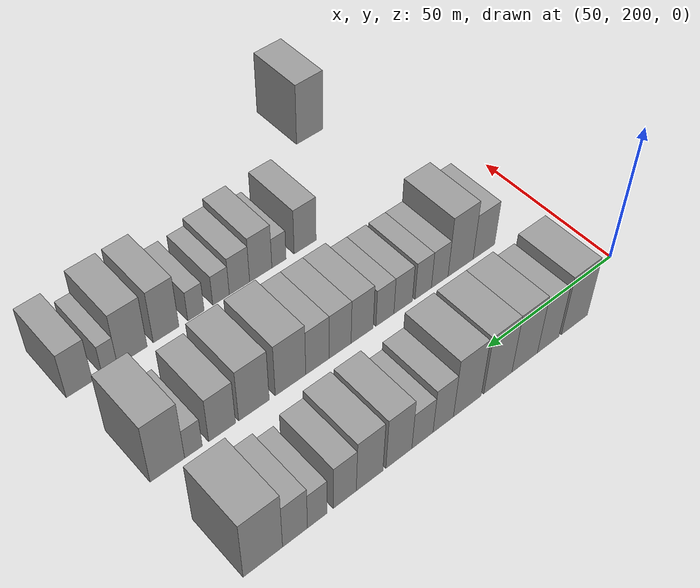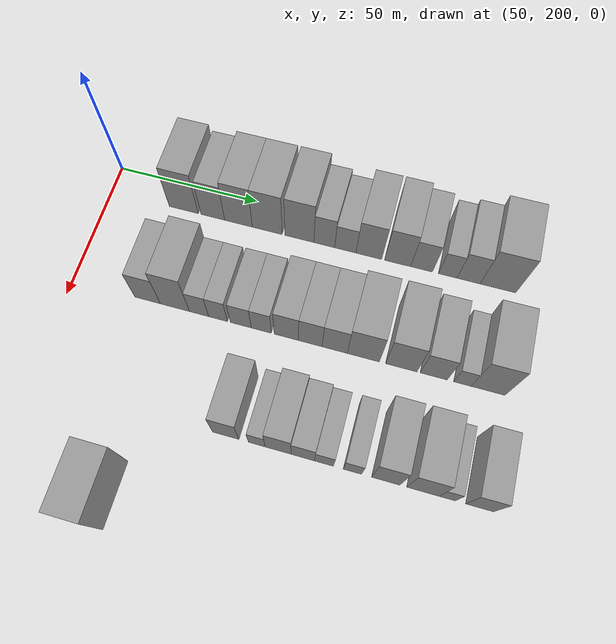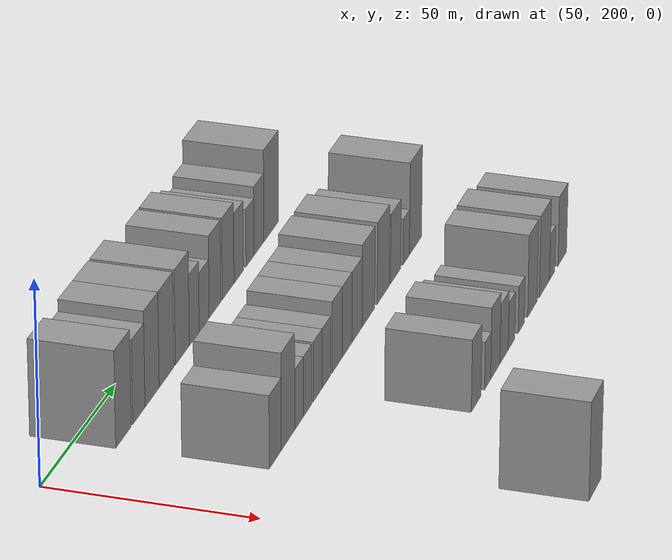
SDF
<sdf version="1.6">
 <world name="default">
  <model name="building_87">
   <static>1</static>
   <pose>50.0000 226.5905 0 0.000000 0.000000 0.000000</pose>
   <link name="link">
    <pose>0 0 12.00 0 0 0</pose>
    <collision name="collision"><geometry><box><size>20.0000 10.5768 24.0000</size></box></geometry></collision>
    <visual name="visual">
     <cast_shadows>0</cast_shadows>
     <geometry><box><size>20.0000 10.5768 24.0000</size></box></geometry>
     <material>
      <script>
       <uri>model://grey_wall/materials/scripts</uri>
       <uri>model://grey_wall/materials/textures</uri>
       <name>vrc/grey_wall</name>
      </script>
     </material>
    </visual>
   </link>
  </model>
  <model name="building_88">
   <static>1</static>
   <pose>50.0000 237.1452 0 0.000000 0.000000 0.000000</pose>
   <link name="link">
    <pose>0 0 10.50 0 0 0</pose>
    <collision name="collision"><geometry><box><size>20.0000 8.5326 21.0000</size></box></geometry></collision>
    <visual name="visual">
     <cast_shadows>0</cast_shadows>
     <geometry><box><size>20.0000 8.5326 21.0000</size></box></geometry>
     <material>
      <script>
       <uri>model://grey_wall/materials/scripts</uri>
       <uri>model://grey_wall/materials/textures</uri>
       <name>vrc/grey_wall</name>
      </script>
     </material>
    </visual>
   </link>
  </model>
  <model name="building_89">
   <static>1</static>
   <pose>50.0000 246.3633 0 0.000000 0.000000 0.000000</pose>
   <link name="link">
    <pose>0 0 12.00 0 0 0</pose>
    <collision name="collision"><geometry><box><size>20.0000 9.9037 24.0000</size></box></geometry></collision>
    <visual name="visual">
     <cast_shadows>0</cast_shadows>
     <geometry><box><size>20.0000 9.9037 24.0000</size></box></geometry>
     <material>
      <script>
       <uri>model://grey_wall/materials/scripts</uri>
       <uri>model://grey_wall/materials/textures</uri>
       <name>vrc/grey_wall</name>
      </script>
     </material>
    </visual>
   </link>
  </model>
  <model name="building_90">
   <static>1</static>
   <pose>50.0000 256.5942 0 0.000000 0.000000 0.000000</pose>
   <link name="link">
    <pose>0 0 12.00 0 0 0</pose>
    <collision name="collision"><geometry><box><size>20.0000 10.5582 24.0000</size></box></geometry></collision>
    <visual name="visual">
     <cast_shadows>0</cast_shadows>
     <geometry><box><size>20.0000 10.5582 24.0000</size></box></geometry>
     <material>
      <script>
       <uri>model://grey_wall/materials/scripts</uri>
       <uri>model://grey_wall/materials/textures</uri>
       <name>vrc/grey_wall</name>
      </script>
     </material>
    </visual>
   </link>
  </model>
  <model name="building_91">
   <static>1</static>
   <pose>50.0000 267.9501 0 0.000000 0.000000 0.000000</pose>
   <link name="link">
    <pose>0 0 12.00 0 0 0</pose>
    <collision name="collision"><geometry><box><size>20.0000 10.1535 24.0000</size></box></geometry></collision>
    <visual name="visual">
     <cast_shadows>0</cast_shadows>
     <geometry><box><size>20.0000 10.1535 24.0000</size></box></geometry>
     <material>
      <script>
       <uri>model://grey_wall/materials/scripts</uri>
       <uri>model://grey_wall/materials/textures</uri>
       <name>vrc/grey_wall</name>
      </script>
     </material>
    </visual>
   </link>
  </model>
  <model name="building_92">
   <static>1</static>
   <pose>50.0000 276.6582 0 0.000000 0.000000 0.000000</pose>
   <link name="link">
    <pose>0 0 9.00 0 0 0</pose>
    <collision name="collision"><geometry><box><size>20.0000 7.2628 18.0000</size></box></geometry></collision>
    <visual name="visual">
     <cast_shadows>0</cast_shadows>
     <geometry><box><size>20.0000 7.2628 18.0000</size></box></geometry>
     <material>
      <script>
       <uri>model://grey_wall/materials/scripts</uri>
       <uri>model://grey_wall/materials/textures</uri>
       <name>vrc/grey_wall</name>
      </script>
     </material>
    </visual>
   </link>
  </model>
  <model name="building_93">
   <static>1</static>
   <pose>50.0000 283.9842 0 0.000000 0.000000 0.000000</pose>
   <link name="link">
    <pose>0 0 7.50 0 0 0</pose>
    <collision name="collision"><geometry><box><size>20.0000 7.3891 15.0000</size></box></geometry></collision>
    <visual name="visual">
     <cast_shadows>0</cast_shadows>
     <geometry><box><size>20.0000 7.3891 15.0000</size></box></geometry>
     <material>
      <script>
       <uri>model://grey_wall/materials/scripts</uri>
       <uri>model://grey_wall/materials/textures</uri>
       <name>vrc/grey_wall</name>
      </script>
     </material>
    </visual>
   </link>
  </model>
  <model name="building_94">
   <static>1</static>
   <pose>50.0000 292.1056 0 0.000000 0.000000 0.000000</pose>
   <link name="link">
    <pose>0 0 10.50 0 0 0</pose>
    <collision name="collision"><geometry><box><size>20.0000 8.8536 21.0000</size></box></geometry></collision>
    <visual name="visual">
     <cast_shadows>0</cast_shadows>
     <geometry><box><size>20.0000 8.8536 21.0000</size></box></geometry>
     <material>
      <script>
       <uri>model://grey_wall/materials/scripts</uri>
       <uri>model://grey_wall/materials/textures</uri>
       <name>vrc/grey_wall</name>
      </script>
     </material>
    </visual>
   </link>
  </model>
  <model name="building_95">
   <static>1</static>
   <pose>50.0000 301.9605 0 0.000000 0.000000 0.000000</pose>
   <link name="link">
    <pose>0 0 10.50 0 0 0</pose>
    <collision name="collision"><geometry><box><size>20.0000 8.8564 21.0000</size></box></geometry></collision>
    <visual name="visual">
     <cast_shadows>0</cast_shadows>
     <geometry><box><size>20.0000 8.8564 21.0000</size></box></geometry>
     <material>
      <script>
       <uri>model://grey_wall/materials/scripts</uri>
       <uri>model://grey_wall/materials/textures</uri>
       <name>vrc/grey_wall</name>
      </script>
     </material>
    </visual>
   </link>
  </model>
  <model name="building_96">
   <static>1</static>
   <pose>50.0000 310.0961 0 0.000000 0.000000 0.000000</pose>
   <link name="link">
    <pose>0 0 9.00 0 0 0</pose>
    <collision name="collision"><geometry><box><size>20.0000 7.4148 18.0000</size></box></geometry></collision>
    <visual name="visual">
     <cast_shadows>0</cast_shadows>
     <geometry><box><size>20.0000 7.4148 18.0000</size></box></geometry>
     <material>
      <script>
       <uri>model://grey_wall/materials/scripts</uri>
       <uri>model://grey_wall/materials/textures</uri>
       <name>vrc/grey_wall</name>
      </script>
     </material>
    </visual>
   </link>
  </model>
  <model name="building_97">
   <static>1</static>
   <pose>50.0000 318.9092 0 0.000000 0.000000 0.000000</pose>
   <link name="link">
    <pose>0 0 7.50 0 0 0</pose>
    <collision name="collision"><geometry><box><size>20.0000 6.2114 15.0000</size></box></geometry></collision>
    <visual name="visual">
     <cast_shadows>0</cast_shadows>
     <geometry><box><size>20.0000 6.2114 15.0000</size></box></geometry>
     <material>
      <script>
       <uri>model://grey_wall/materials/scripts</uri>
       <uri>model://grey_wall/materials/textures</uri>
       <name>vrc/grey_wall</name>
      </script>
     </material>
    </visual>
   </link>
  </model>
  <model name="building_98">
   <static>1</static>
   <pose>50.0000 325.8660 0 0.000000 0.000000 0.000000</pose>
   <link name="link">
    <pose>0 0 9.00 0 0 0</pose>
    <collision name="collision"><geometry><box><size>20.0000 7.7023 18.0000</size></box></geometry></collision>
    <visual name="visual">
     <cast_shadows>0</cast_shadows>
     <geometry><box><size>20.0000 7.7023 18.0000</size></box></geometry>
     <material>
      <script>
       <uri>model://grey_wall/materials/scripts</uri>
       <uri>model://grey_wall/materials/textures</uri>
       <name>vrc/grey_wall</name>
      </script>
     </material>
    </visual>
   </link>
  </model>
  <model name="building_99">
   <static>1</static>
   <pose>50.0000 335.6517 0 0.000000 0.000000 0.000000</pose>
   <link name="link">
    <pose>0 0 12.00 0 0 0</pose>
    <collision name="collision"><geometry><box><size>20.0000 11.8690 24.0000</size></box></geometry></collision>
    <visual name="visual">
     <cast_shadows>0</cast_shadows>
     <geometry><box><size>20.0000 11.8690 24.0000</size></box></geometry>
     <material>
      <script>
       <uri>model://grey_wall/materials/scripts</uri>
       <uri>model://grey_wall/materials/textures</uri>
       <name>vrc/grey_wall</name>
      </script>
     </material>
    </visual>
   </link>
  </model>
  <model name="building_208">
   <static>1</static>
   <pose>85.0000 226.3395 0 0.000000 0.000000 0.000000</pose>
   <link name="link">
    <pose>0 0 9.00 0 0 0</pose>
    <collision name="collision"><geometry><box><size>20.0000 8.8188 18.0000</size></box></geometry></collision>
    <visual name="visual">
     <cast_shadows>0</cast_shadows>
     <geometry><box><size>20.0000 8.8188 18.0000</size></box></geometry>
     <material>
      <script>
       <uri>model://grey_wall/materials/scripts</uri>
       <uri>model://grey_wall/materials/textures</uri>
       <name>vrc/grey_wall</name>
      </script>
     </material>
    </visual>
   </link>
  </model>
  <model name="building_209">
   <static>1</static>
   <pose>85.0000 235.7666 0 0.000000 0.000000 0.000000</pose>
   <link name="link">
    <pose>0 0 12.00 0 0 0</pose>
    <collision name="collision"><geometry><box><size>20.0000 10.0355 24.0000</size></box></geometry></collision>
    <visual name="visual">
     <cast_shadows>0</cast_shadows>
     <geometry><box><size>20.0000 10.0355 24.0000</size></box></geometry>
     <material>
      <script>
       <uri>model://grey_wall/materials/scripts</uri>
       <uri>model://grey_wall/materials/textures</uri>
       <name>vrc/grey_wall</name>
      </script>
     </material>
    </visual>
   </link>
  </model>
  <model name="building_210">
   <static>1</static>
   <pose>85.0000 244.0580 0 0.000000 0.000000 0.000000</pose>
   <link name="link">
    <pose>0 0 7.50 0 0 0</pose>
    <collision name="collision"><geometry><box><size>20.0000 6.5473 15.0000</size></box></geometry></collision>
    <visual name="visual">
     <cast_shadows>0</cast_shadows>
     <geometry><box><size>20.0000 6.5473 15.0000</size></box></geometry>
     <material>
      <script>
       <uri>model://grey_wall/materials/scripts</uri>
       <uri>model://grey_wall/materials/textures</uri>
       <name>vrc/grey_wall</name>
      </script>
     </material>
    </visual>
   </link>
  </model>
  <model name="building_211">
   <static>1</static>
   <pose>85.0000 250.5014 0 0.000000 0.000000 0.000000</pose>
   <link name="link">
    <pose>0 0 7.50 0 0 0</pose>
    <collision name="collision"><geometry><box><size>20.0000 6.3394 15.0000</size></box></geometry></collision>
    <visual name="visual">
     <cast_shadows>0</cast_shadows>
     <geometry><box><size>20.0000 6.3394 15.0000</size></box></geometry>
     <material>
      <script>
       <uri>model://grey_wall/materials/scripts</uri>
       <uri>model://grey_wall/materials/textures</uri>
       <name>vrc/grey_wall</name>
      </script>
     </material>
    </visual>
   </link>
  </model>
  <model name="building_212">
   <static>1</static>
   <pose>85.0000 258.1674 0 0.000000 0.000000 0.000000</pose>
   <link name="link">
    <pose>0 0 7.50 0 0 0</pose>
    <collision name="collision"><geometry><box><size>20.0000 6.9926 15.0000</size></box></geometry></collision>
    <visual name="visual">
     <cast_shadows>0</cast_shadows>
     <geometry><box><size>20.0000 6.9926 15.0000</size></box></geometry>
     <material>
      <script>
       <uri>model://grey_wall/materials/scripts</uri>
       <uri>model://grey_wall/materials/textures</uri>
       <name>vrc/grey_wall</name>
      </script>
     </material>
    </visual>
   </link>
  </model>
  <model name="building_213">
   <static>1</static>
   <pose>85.0000 265.0071 0 0.000000 0.000000 0.000000</pose>
   <link name="link">
    <pose>0 0 7.50 0 0 0</pose>
    <collision name="collision"><geometry><box><size>20.0000 6.6869 15.0000</size></box></geometry></collision>
    <visual name="visual">
     <cast_shadows>0</cast_shadows>
     <geometry><box><size>20.0000 6.6869 15.0000</size></box></geometry>
     <material>
      <script>
       <uri>model://grey_wall/materials/scripts</uri>
       <uri>model://grey_wall/materials/textures</uri>
       <name>vrc/grey_wall</name>
      </script>
     </material>
    </visual>
   </link>
  </model>
  <model name="building_214">
   <static>1</static>
   <pose>85.0000 273.3747 0 0.000000 0.000000 0.000000</pose>
   <link name="link">
    <pose>0 0 9.00 0 0 0</pose>
    <collision name="collision"><geometry><box><size>20.0000 8.0482 18.0000</size></box></geometry></collision>
    <visual name="visual">
     <cast_shadows>0</cast_shadows>
     <geometry><box><size>20.0000 8.0482 18.0000</size></box></geometry>
     <material>
      <script>
       <uri>model://grey_wall/materials/scripts</uri>
       <uri>model://grey_wall/materials/textures</uri>
       <name>vrc/grey_wall</name>
      </script>
     </material>
    </visual>
   </link>
  </model>
  <model name="building_215">
   <static>1</static>
   <pose>85.0000 281.2694 0 0.000000 0.000000 0.000000</pose>
   <link name="link">
    <pose>0 0 9.00 0 0 0</pose>
    <collision name="collision"><geometry><box><size>20.0000 7.7413 18.0000</size></box></geometry></collision>
    <visual name="visual">
     <cast_shadows>0</cast_shadows>
     <geometry><box><size>20.0000 7.7413 18.0000</size></box></geometry>
     <material>
      <script>
       <uri>model://grey_wall/materials/scripts</uri>
       <uri>model://grey_wall/materials/textures</uri>
       <name>vrc/grey_wall</name>
      </script>
     </material>
    </visual>
   </link>
  </model>
  <model name="building_216">
   <static>1</static>
   <pose>85.0000 289.2467 0 0.000000 0.000000 0.000000</pose>
   <link name="link">
    <pose>0 0 9.00 0 0 0</pose>
    <collision name="collision"><geometry><box><size>20.0000 8.2133 18.0000</size></box></geometry></collision>
    <visual name="visual">
     <cast_shadows>0</cast_shadows>
     <geometry><box><size>20.0000 8.2133 18.0000</size></box></geometry>
     <material>
      <script>
       <uri>model://grey_wall/materials/scripts</uri>
       <uri>model://grey_wall/materials/textures</uri>
       <name>vrc/grey_wall</name>
      </script>
     </material>
    </visual>
   </link>
  </model>
  <model name="building_217">
   <static>1</static>
   <pose>85.0000 298.5450 0 0.000000 0.000000 0.000000</pose>
   <link name="link">
    <pose>0 0 10.50 0 0 0</pose>
    <collision name="collision"><geometry><box><size>20.0000 10.3832 21.0000</size></box></geometry></collision>
    <visual name="visual">
     <cast_shadows>0</cast_shadows>
     <geometry><box><size>20.0000 10.3832 21.0000</size></box></geometry>
     <material>
      <script>
       <uri>model://grey_wall/materials/scripts</uri>
       <uri>model://grey_wall/materials/textures</uri>
       <name>vrc/grey_wall</name>
      </script>
     </material>
    </visual>
   </link>
  </model>
  <model name="building_218">
   <static>1</static>
   <pose>85.0000 310.7754 0 0.000000 0.000000 0.000000</pose>
   <link name="link">
    <pose>0 0 10.50 0 0 0</pose>
    <collision name="collision"><geometry><box><size>20.0000 10.0776 21.0000</size></box></geometry></collision>
    <visual name="visual">
     <cast_shadows>0</cast_shadows>
     <geometry><box><size>20.0000 10.0776 21.0000</size></box></geometry>
     <material>
      <script>
       <uri>model://grey_wall/materials/scripts</uri>
       <uri>model://grey_wall/materials/textures</uri>
       <name>vrc/grey_wall</name>
      </script>
     </material>
    </visual>
   </link>
  </model>
  <model name="building_219">
   <static>1</static>
   <pose>85.0000 321.1157 0 0.000000 0.000000 0.000000</pose>
   <link name="link">
    <pose>0 0 9.00 0 0 0</pose>
    <collision name="collision"><geometry><box><size>20.0000 8.6030 18.0000</size></box></geometry></collision>
    <visual name="visual">
     <cast_shadows>0</cast_shadows>
     <geometry><box><size>20.0000 8.6030 18.0000</size></box></geometry>
     <material>
      <script>
       <uri>model://grey_wall/materials/scripts</uri>
       <uri>model://grey_wall/materials/textures</uri>
       <name>vrc/grey_wall</name>
      </script>
     </material>
    </visual>
   </link>
  </model>
  <model name="building_220">
   <static>1</static>
   <pose>85.0000 330.1701 0 0.000000 0.000000 0.000000</pose>
   <link name="link">
    <pose>0 0 6.00 0 0 0</pose>
    <collision name="collision"><geometry><box><size>20.0000 5.5057 12.0000</size></box></geometry></collision>
    <visual name="visual">
     <cast_shadows>0</cast_shadows>
     <geometry><box><size>20.0000 5.5057 12.0000</size></box></geometry>
     <material>
      <script>
       <uri>model://grey_wall/materials/scripts</uri>
       <uri>model://grey_wall/materials/textures</uri>
       <name>vrc/grey_wall</name>
      </script>
     </material>
    </visual>
   </link>
  </model>
  <model name="building_221">
   <static>1</static>
   <pose>85.0000 338.2046 0 0.000000 0.000000 0.000000</pose>
   <link name="link">
    <pose>0 0 12.00 0 0 0</pose>
    <collision name="collision"><geometry><box><size>20.0000 10.5634 24.0000</size></box></geometry></collision>
    <visual name="visual">
     <cast_shadows>0</cast_shadows>
     <geometry><box><size>20.0000 10.5634 24.0000</size></box></geometry>
     <material>
      <script>
       <uri>model://grey_wall/materials/scripts</uri>
       <uri>model://grey_wall/materials/textures</uri>
       <name>vrc/grey_wall</name>
      </script>
     </material>
    </visual>
   </link>
  </model>
  <model name="building_341">
   <static>1</static>
   <pose>120.0000 264.4002 0 0.000000 0.000000 0.000000</pose>
   <link name="link">
    <pose>0 0 9.00 0 0 0</pose>
    <collision name="collision"><geometry><box><size>20.0000 8.2802 18.0000</size></box></geometry></collision>
    <visual name="visual">
     <cast_shadows>0</cast_shadows>
     <geometry><box><size>20.0000 8.2802 18.0000</size></box></geometry>
     <material>
      <script>
       <uri>model://grey_wall/materials/scripts</uri>
       <uri>model://grey_wall/materials/textures</uri>
       <name>vrc/grey_wall</name>
      </script>
     </material>
    </visual>
   </link>
  </model>
  <model name="building_342">
   <static>1</static>
   <pose>120.0000 274.1498 0 0.000000 0.000000 0.000000</pose>
   <link name="link">
    <pose>0 0 6.00 0 0 0</pose>
    <collision name="collision"><geometry><box><size>20.0000 5.2189 12.0000</size></box></geometry></collision>
    <visual name="visual">
     <cast_shadows>0</cast_shadows>
     <geometry><box><size>20.0000 5.2189 12.0000</size></box></geometry>
     <material>
      <script>
       <uri>model://grey_wall/materials/scripts</uri>
       <uri>model://grey_wall/materials/textures</uri>
       <name>vrc/grey_wall</name>
      </script>
     </material>
    </visual>
   </link>
  </model>
  <model name="building_343">
   <static>1</static>
   <pose>120.0000 280.7893 0 0.000000 0.000000 0.000000</pose>
   <link name="link">
    <pose>0 0 9.00 0 0 0</pose>
    <collision name="collision"><geometry><box><size>20.0000 8.0600 18.0000</size></box></geometry></collision>
    <visual name="visual">
     <cast_shadows>0</cast_shadows>
     <geometry><box><size>20.0000 8.0600 18.0000</size></box></geometry>
     <material>
      <script>
       <uri>model://grey_wall/materials/scripts</uri>
       <uri>model://grey_wall/materials/textures</uri>
       <name>vrc/grey_wall</name>
      </script>
     </material>
    </visual>
   </link>
  </model>
  <model name="building_344">
   <static>1</static>
   <pose>120.0000 288.4284 0 0.000000 0.000000 0.000000</pose>
   <link name="link">
    <pose>0 0 7.50 0 0 0</pose>
    <collision name="collision"><geometry><box><size>20.0000 7.2183 15.0000</size></box></geometry></collision>
    <visual name="visual">
     <cast_shadows>0</cast_shadows>
     <geometry><box><size>20.0000 7.2183 15.0000</size></box></geometry>
     <material>
      <script>
       <uri>model://grey_wall/materials/scripts</uri>
       <uri>model://grey_wall/materials/textures</uri>
       <name>vrc/grey_wall</name>
      </script>
     </material>
    </visual>
   </link>
  </model>
  <model name="building_345">
   <static>1</static>
   <pose>120.0000 294.9338 0 0.000000 0.000000 0.000000</pose>
   <link name="link">
    <pose>0 0 6.00 0 0 0</pose>
    <collision name="collision"><geometry><box><size>20.0000 5.7926 12.0000</size></box></geometry></collision>
    <visual name="visual">
     <cast_shadows>0</cast_shadows>
     <geometry><box><size>20.0000 5.7926 12.0000</size></box></geometry>
     <material>
      <script>
       <uri>model://grey_wall/materials/scripts</uri>
       <uri>model://grey_wall/materials/textures</uri>
       <name>vrc/grey_wall</name>
      </script>
     </material>
    </visual>
   </link>
  </model>
  <model name="building_346">
   <static>1</static>
   <pose>120.0000 303.6219 0 0.000000 0.000000 0.000000</pose>
   <link name="link">
    <pose>0 0 6.00 0 0 0</pose>
    <collision name="collision"><geometry><box><size>20.0000 5.5836 12.0000</size></box></geometry></collision>
    <visual name="visual">
     <cast_shadows>0</cast_shadows>
     <geometry><box><size>20.0000 5.5836 12.0000</size></box></geometry>
     <material>
      <script>
       <uri>model://grey_wall/materials/scripts</uri>
       <uri>model://grey_wall/materials/textures</uri>
       <name>vrc/grey_wall</name>
      </script>
     </material>
    </visual>
   </link>
  </model>
  <model name="building_347">
   <static>1</static>
   <pose>120.0000 313.6865 0 0.000000 0.000000 0.000000</pose>
   <link name="link">
    <pose>0 0 10.50 0 0 0</pose>
    <collision name="collision"><geometry><box><size>20.0000 8.5456 21.0000</size></box></geometry></collision>
    <visual name="visual">
     <cast_shadows>0</cast_shadows>
     <geometry><box><size>20.0000 8.5456 21.0000</size></box></geometry>
     <material>
      <script>
       <uri>model://grey_wall/materials/scripts</uri>
       <uri>model://grey_wall/materials/textures</uri>
       <name>vrc/grey_wall</name>
      </script>
     </material>
    </visual>
   </link>
  </model>
  <model name="building_348">
   <static>1</static>
   <pose>120.0000 324.7716 0 0.000000 0.000000 0.000000</pose>
   <link name="link">
    <pose>0 0 10.50 0 0 0</pose>
    <collision name="collision"><geometry><box><size>20.0000 9.6245 21.0000</size></box></geometry></collision>
    <visual name="visual">
     <cast_shadows>0</cast_shadows>
     <geometry><box><size>20.0000 9.6245 21.0000</size></box></geometry>
     <material>
      <script>
       <uri>model://grey_wall/materials/scripts</uri>
       <uri>model://grey_wall/materials/textures</uri>
       <name>vrc/grey_wall</name>
      </script>
     </material>
    </visual>
   </link>
  </model>
  <model name="building_349">
   <static>1</static>
   <pose>120.0000 332.0092 0 0.000000 0.000000 0.000000</pose>
   <link name="link">
    <pose>0 0 6.00 0 0 0</pose>
    <collision name="collision"><geometry><box><size>20.0000 4.8507 12.0000</size></box></geometry></collision>
    <visual name="visual">
     <cast_shadows>0</cast_shadows>
     <geometry><box><size>20.0000 4.8507 12.0000</size></box></geometry>
     <material>
      <script>
       <uri>model://grey_wall/materials/scripts</uri>
       <uri>model://grey_wall/materials/textures</uri>
       <name>vrc/grey_wall</name>
      </script>
     </material>
    </visual>
   </link>
  </model>
  <model name="building_350">
   <static>1</static>
   <pose>120.0000 341.5160 0 0.000000 0.000000 0.000000</pose>
   <link name="link">
    <pose>0 0 9.00 0 0 0</pose>
    <collision name="collision"><geometry><box><size>20.0000 8.1628 18.0000</size></box></geometry></collision>
    <visual name="visual">
     <cast_shadows>0</cast_shadows>
     <geometry><box><size>20.0000 8.1628 18.0000</size></box></geometry>
     <material>
      <script>
       <uri>model://grey_wall/materials/scripts</uri>
       <uri>model://grey_wall/materials/textures</uri>
       <name>vrc/grey_wall</name>
      </script>
     </material>
    </visual>
   </link>
  </model>
  <model name="building_457">
   <static>1</static>
   <pose>155.0000 233.3695 0 0.000000 0.000000 0.000000</pose>
   <link name="link">
    <pose>0 0 12.00 0 0 0</pose>
    <collision name="collision"><geometry><box><size>20.0000 10.7880 24.0000</size></box></geometry></collision>
    <visual name="visual">
     <cast_shadows>0</cast_shadows>
     <geometry><box><size>20.0000 10.7880 24.0000</size></box></geometry>
     <material>
      <script>
       <uri>model://grey_wall/materials/scripts</uri>
       <uri>model://grey_wall/materials/textures</uri>
       <name>vrc/grey_wall</name>
      </script>
     </material>
    </visual>
   </link>
  </model>
 </world>
</sdf>
